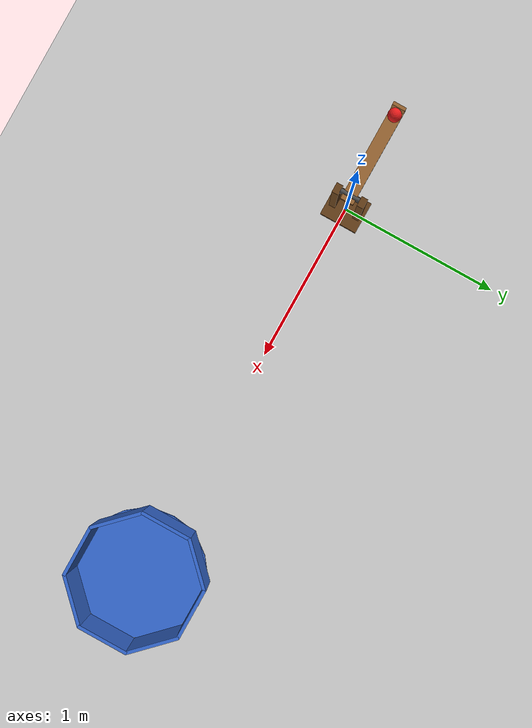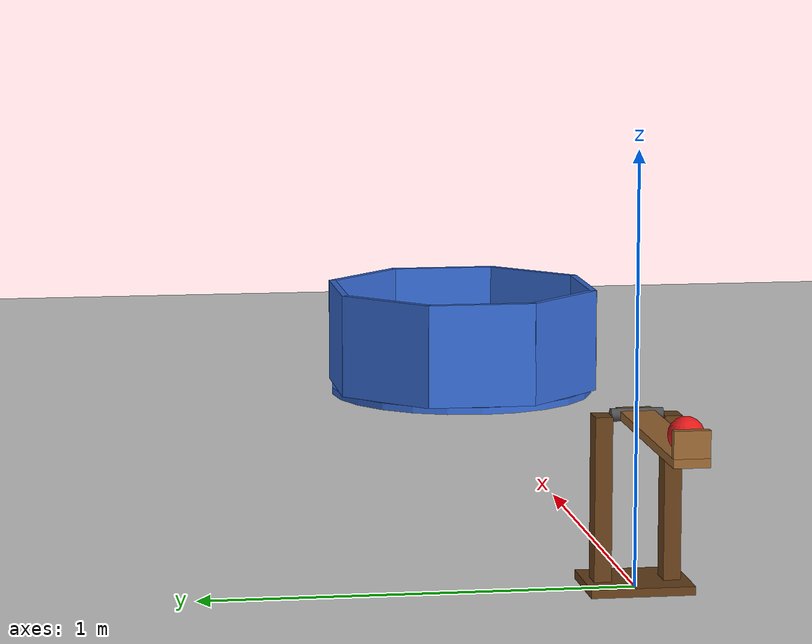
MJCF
<mujoco model="catapult_bucket">
  <option timestep="0.002"/>

  <worldbody>
    <light name="sun" pos="1 -2 4" dir="-0.2 0.4 -1" directional="true"/>
    <geom name="floor" type="plane" pos="0 0 0" size="5 5 0.1" rgba="0.8 0.8 0.8 1"/>

    <!-- catapult frame (visual only, non-colliding) -->
    <geom name="catapult_base" type="box" pos="0 0 0.01" size="0.1 0.12 0.01" contype="0" conaffinity="0" rgba="0.4 0.25 0.1 1"/>
    <geom name="catapult_post_left" type="box" pos="0 0.08 0.2" size="0.03 0.02 0.2" contype="0" conaffinity="0" rgba="0.4 0.25 0.1 1"/>
    <geom name="catapult_post_right" type="box" pos="0 -0.08 0.2" size="0.03 0.02 0.2" contype="0" conaffinity="0" rgba="0.4 0.25 0.1 1"/>

    <!-- catapult arm: hinge about y at z=0.4, arm points along -x, swings up to 45 deg -->
    <body name="catapult_arm" pos="0 0 0.4">
      <joint name="catapult_hinge" type="hinge" axis="0 1 0" range="0 45" limited="true" solreflimit="0.01 1"/>
      <geom name="catapult_beam" type="box" pos="-0.26 0 0" size="0.30 0.04 0.01" mass="0.3" rgba="0.6 0.4 0.2 1"/>
      <geom name="catapult_lip" type="box" pos="-0.55 0 0.04" size="0.01 0.04 0.03" mass="0.03" priority="1" condim="1" rgba="0.6 0.4 0.2 1"/>
      <geom name="catapult_axle" type="cylinder" pos="0 0 0" euler="90 0 0" size="0.015 0.06" mass="0.02" contype="0" conaffinity="0" rgba="0.3 0.3 0.3 1"/>
    </body>

    <!-- bucket: centre at x=2.5, 3 m from ball start at x=-0.5 -->
    <body name="bucket" pos="2.5 0 0">
      <geom name="bucket_bottom" type="cylinder" pos="0 0 0.01" size="0.39 0.01" condim="6" friction="1 0.01 0.001" rgba="0.2 0.4 0.8 1"/>
      <geom name="bucket_wall0" type="box" pos="0.37 0 0.17" euler="0 0 0" size="0.01 0.158 0.15" rgba="0.2 0.4 0.8 1"/>
      <geom name="bucket_wall1" type="box" pos="0.2616 0.2616 0.17" euler="0 0 45" size="0.01 0.158 0.15" rgba="0.2 0.4 0.8 1"/>
      <geom name="bucket_wall2" type="box" pos="0 0.37 0.17" euler="0 0 90" size="0.01 0.158 0.15" rgba="0.2 0.4 0.8 1"/>
      <geom name="bucket_wall3" type="box" pos="-0.2616 0.2616 0.17" euler="0 0 135" size="0.01 0.158 0.15" rgba="0.2 0.4 0.8 1"/>
      <geom name="bucket_wall4" type="box" pos="-0.37 0 0.17" euler="0 0 180" size="0.01 0.158 0.15" rgba="0.2 0.4 0.8 1"/>
      <geom name="bucket_wall5" type="box" pos="-0.2616 -0.2616 0.17" euler="0 0 225" size="0.01 0.158 0.15" rgba="0.2 0.4 0.8 1"/>
      <geom name="bucket_wall6" type="box" pos="0 -0.37 0.17" euler="0 0 270" size="0.01 0.158 0.15" rgba="0.2 0.4 0.8 1"/>
      <geom name="bucket_wall7" type="box" pos="0.2616 -0.2616 0.17" euler="0 0 315" size="0.01 0.158 0.15" rgba="0.2 0.4 0.8 1"/>
    </body>

    <!-- ball resting on the arm against the lip -->
    <body name="ball" pos="-0.5 0 0.45">
      <freejoint name="ball_free"/>
      <geom name="ball" type="sphere" size="0.04" mass="0.1" rgba="0.9 0.1 0.1 1"/>
    </body>
  </worldbody>

  <actuator>
    <velocity name="catapult_motor" joint="catapult_hinge" kv="20" forcelimited="true" forcerange="-10 10"/>
  </actuator>

  <keyframe>
    <key name="start" qpos="0 -0.5 0 0.45 1 0 0 0" qvel="0 0 0 0 0 0 0" ctrl="9.56"/>
  </keyframe>
</mujoco>
